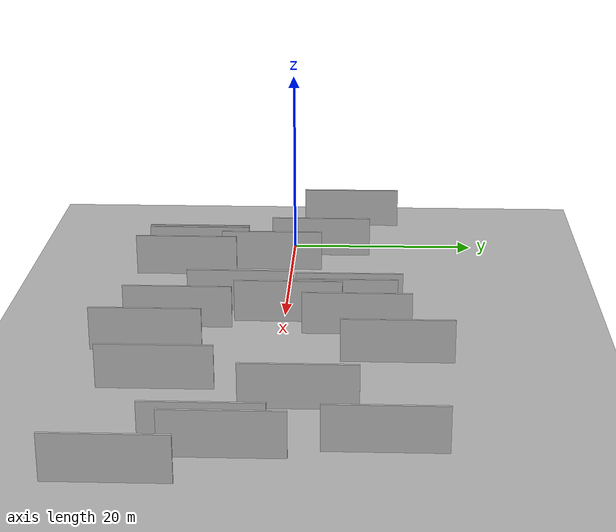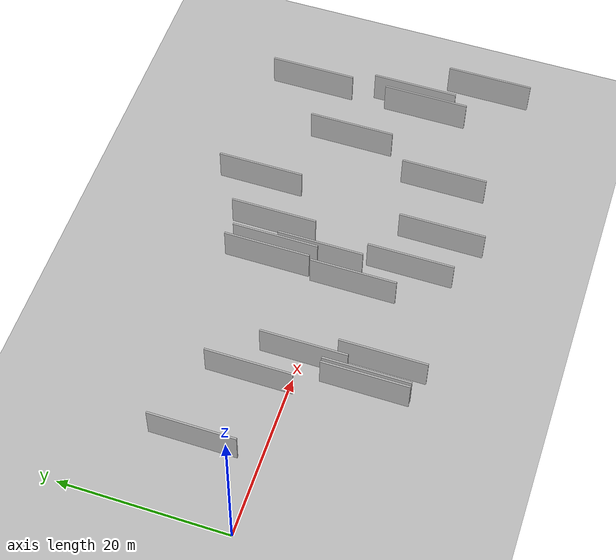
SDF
<?xml version="1.0" encoding="utf-8"?>

<sdf version="1.6">

   <world name="default">

      <gui fullscreen="0">

         <camera name="user_camera">

            <pose>-15 0 4.57585 0 0 0</pose>

            <view_controller>orbit</view_controller>

         </camera>

      </gui>

      <scene>

         <sky>

           <clouds>

             <speed>12</speed>

           </clouds>

         </sky>

         <ambient>0.4 0.4 0.4 1</ambient>

         <background>0.7 0.7 0.7 1</background>

         <shadows>1</shadows>

      </scene>

      <gravity>0 0 -9.8066</gravity>

      <magnetic_field>6e-06 2.3e-05 -4.2e-05</magnetic_field>

      <physics default="0" name="default_physics" type="ode">

         <ode>

            <solver>

               <type>quick</type>

               <iters>10</iters>

               <sor>1.0</sor>

               <use_dynamic_moi_rescaling>0</use_dynamic_moi_rescaling>

            </solver>

            <constraints>

               <cfm>0</cfm>

               <erp>0.2</erp>

               <contact_max_correcting_vel>100</contact_max_correcting_vel>

               <contact_surface_layer>0.001</contact_surface_layer>

            </constraints>

         </ode>

         <max_step_size>0.004</max_step_size>

         <real_time_factor>1</real_time_factor>

         <real_time_update_rate>250</real_time_update_rate>

      </physics>

      <light name="sun" type="directional">

         <cast_shadows>1</cast_shadows>

         <pose>0 0 10 0 0 0</pose>

         <diffuse>0.8 0.8 0.8 1</diffuse>

         <specular>0.2 0.2 0.2 1</specular>

         <attenuation>

            <range>1000</range>

            <constant>0.9</constant>

            <linear>0.01</linear>

            <quadratic>0.001</quadratic>

         </attenuation>

         <direction>-0.5 0.1 -0.9</direction>

      </light>

      <include>

         <name>ground_plane_1</name>

         <uri>model://HANNAS_ground_plane</uri>

         <pose>0 0 0  0 0 0</pose>

      </include>

      <include>

         <name>ground_plane_2</name>

         <uri>model://HANNAS_ground_plane</uri>

         <pose>100 0 0  0 0 0</pose>

      </include>

      <model name="HANNAS_wall_1">

         <static>1</static>

         <pose frame="">32.2207 6.1611 5.0 0.000000 0.000000 1.570796</pose>

         <link name="link">

            <pose frame="">0 0 2.00 0 0 0</pose>

            <collision name="collision">

               <geometry>

                  <box>

                     <size>10.00 0.2 4.00</size>

                  </box>

               </geometry>

               <max_contacts>10</max_contacts>

               <surface>

                  <contact>

                     <ode/>

                  </contact>

                  <bounce/>

                  <friction>

                     <torsional>

                        <ode/>

                     </torsional>

                     <ode/>

                  </friction>

               </surface>

            </collision>

            <visual name="visual">

               <cast_shadows>0</cast_shadows>

               <geometry>

                  <box>

                     <size>10.00 0.2 4.00</size>

                  </box>

               </geometry>

               <material>

                  <script>

                     <uri>model://HANNAS_wall/materials/scripts</uri>

                     <uri>model://HANNAS_wall/materials/textures</uri>

                     <name>vrc/HANNAS_wall</name>

                  </script>

               </material>

            </visual>

            <self_collide>0</self_collide>

            <enable_wind>0</enable_wind>

            <kinematic>0</kinematic>

         </link>

      </model>

      <model name="HANNAS_wall_2">

         <static>1</static>

         <pose frame="">30.7261 6.6524 5.0 0.000000 0.000000 1.570796</pose>

         <link name="link">

            <pose frame="">0 0 2.00 0 0 0</pose>

            <collision name="collision">

               <geometry>

                  <box>

                     <size>10.00 0.2 4.00</size>

                  </box>

               </geometry>

               <max_contacts>10</max_contacts>

               <surface>

                  <contact>

                     <ode/>

                  </contact>

                  <bounce/>

                  <friction>

                     <torsional>

                        <ode/>

                     </torsional>

                     <ode/>

                  </friction>

               </surface>

            </collision>

            <visual name="visual">

               <cast_shadows>0</cast_shadows>

               <geometry>

                  <box>

                     <size>10.00 0.2 4.00</size>

                  </box>

               </geometry>

               <material>

                  <script>

                     <uri>model://HANNAS_wall/materials/scripts</uri>

                     <uri>model://HANNAS_wall/materials/textures</uri>

                     <name>vrc/HANNAS_wall</name>

                  </script>

               </material>

            </visual>

            <self_collide>0</self_collide>

            <enable_wind>0</enable_wind>

            <kinematic>0</kinematic>

         </link>

      </model>

      <model name="HANNAS_wall_3">

         <static>1</static>

         <pose frame="">30.2914 -3.5749 5.0 0.000000 0.000000 1.570796</pose>

         <link name="link">

            <pose frame="">0 0 2.00 0 0 0</pose>

            <collision name="collision">

               <geometry>

                  <box>

                     <size>10.00 0.2 4.00</size>

                  </box>

               </geometry>

               <max_contacts>10</max_contacts>

               <surface>

                  <contact>

                     <ode/>

                  </contact>

                  <bounce/>

                  <friction>

                     <torsional>

                        <ode/>

                     </torsional>

                     <ode/>

                  </friction>

               </surface>

            </collision>

            <visual name="visual">

               <cast_shadows>0</cast_shadows>

               <geometry>

                  <box>

                     <size>10.00 0.2 4.00</size>

                  </box>

               </geometry>

               <material>

                  <script>

                     <uri>model://HANNAS_wall/materials/scripts</uri>

                     <uri>model://HANNAS_wall/materials/textures</uri>

                     <name>vrc/HANNAS_wall</name>

                  </script>

               </material>

            </visual>

            <self_collide>0</self_collide>

            <enable_wind>0</enable_wind>

            <kinematic>0</kinematic>

         </link>

      </model>

      <model name="HANNAS_wall_4">

         <static>1</static>

         <pose frame="">62.5557 -10.7909 5.0 0.000000 0.000000 1.570796</pose>

         <link name="link">

            <pose frame="">0 0 2.00 0 0 0</pose>

            <collision name="collision">

               <geometry>

                  <box>

                     <size>10.00 0.2 4.00</size>

                  </box>

               </geometry>

               <max_contacts>10</max_contacts>

               <surface>

                  <contact>

                     <ode/>

                  </contact>

                  <bounce/>

                  <friction>

                     <torsional>

                        <ode/>

                     </torsional>

                     <ode/>

                  </friction>

               </surface>

            </collision>

            <visual name="visual">

               <cast_shadows>0</cast_shadows>

               <geometry>

                  <box>

                     <size>10.00 0.2 4.00</size>

                  </box>

               </geometry>

               <material>

                  <script>

                     <uri>model://HANNAS_wall/materials/scripts</uri>

                     <uri>model://HANNAS_wall/materials/textures</uri>

                     <name>vrc/HANNAS_wall</name>

                  </script>

               </material>

            </visual>

            <self_collide>0</self_collide>

            <enable_wind>0</enable_wind>

            <kinematic>0</kinematic>

         </link>

      </model>

      <model name="HANNAS_wall_5">

         <static>1</static>

         <pose frame="">35.4638 7.4393 5.0 0.000000 0.000000 1.570796</pose>

         <link name="link">

            <pose frame="">0 0 2.00 0 0 0</pose>

            <collision name="collision">

               <geometry>

                  <box>

                     <size>10.00 0.2 4.00</size>

                  </box>

               </geometry>

               <max_contacts>10</max_contacts>

               <surface>

                  <contact>

                     <ode/>

                  </contact>

                  <bounce/>

                  <friction>

                     <torsional>

                        <ode/>

                     </torsional>

                     <ode/>

                  </friction>

               </surface>

            </collision>

            <visual name="visual">

               <cast_shadows>0</cast_shadows>

               <geometry>

                  <box>

                     <size>10.00 0.2 4.00</size>

                  </box>

               </geometry>

               <material>

                  <script>

                     <uri>model://HANNAS_wall/materials/scripts</uri>

                     <uri>model://HANNAS_wall/materials/textures</uri>

                     <name>vrc/HANNAS_wall</name>

                  </script>

               </material>

            </visual>

            <self_collide>0</self_collide>

            <enable_wind>0</enable_wind>

            <kinematic>0</kinematic>

         </link>

      </model>

      <model name="HANNAS_wall_6">

         <static>1</static>

         <pose frame="">32.7932 1.0570 5.0 0.000000 0.000000 1.570796</pose>

         <link name="link">

            <pose frame="">0 0 2.00 0 0 0</pose>

            <collision name="collision">

               <geometry>

                  <box>

                     <size>10.00 0.2 4.00</size>

                  </box>

               </geometry>

               <max_contacts>10</max_contacts>

               <surface>

                  <contact>

                     <ode/>

                  </contact>

                  <bounce/>

                  <friction>

                     <torsional>

                        <ode/>

                     </torsional>

                     <ode/>

                  </friction>

               </surface>

            </collision>

            <visual name="visual">

               <cast_shadows>0</cast_shadows>

               <geometry>

                  <box>

                     <size>10.00 0.2 4.00</size>

                  </box>

               </geometry>

               <material>

                  <script>

                     <uri>model://HANNAS_wall/materials/scripts</uri>

                     <uri>model://HANNAS_wall/materials/textures</uri>

                     <name>vrc/HANNAS_wall</name>

                  </script>

               </material>

            </visual>

            <self_collide>0</self_collide>

            <enable_wind>0</enable_wind>

            <kinematic>0</kinematic>

         </link>

      </model>

      <model name="HANNAS_wall_7">

         <static>1</static>

         <pose frame="">34.3178 -9.0145 5.0 0.000000 0.000000 1.570796</pose>

         <link name="link">

            <pose frame="">0 0 2.00 0 0 0</pose>

            <collision name="collision">

               <geometry>

                  <box>

                     <size>10.00 0.2 4.00</size>

                  </box>

               </geometry>

               <max_contacts>10</max_contacts>

               <surface>

                  <contact>

                     <ode/>

                  </contact>

                  <bounce/>

                  <friction>

                     <torsional>

                        <ode/>

                     </torsional>

                     <ode/>

                  </friction>

               </surface>

            </collision>

            <visual name="visual">

               <cast_shadows>0</cast_shadows>

               <geometry>

                  <box>

                     <size>10.00 0.2 4.00</size>

                  </box>

               </geometry>

               <material>

                  <script>

                     <uri>model://HANNAS_wall/materials/scripts</uri>

                     <uri>model://HANNAS_wall/materials/textures</uri>

                     <name>vrc/HANNAS_wall</name>

                  </script>

               </material>

            </visual>

            <self_collide>0</self_collide>

            <enable_wind>0</enable_wind>

            <kinematic>0</kinematic>

         </link>

      </model>

      <model name="HANNAS_wall_8">

         <static>1</static>

         <pose frame="">19.7559 -1.3024 5.0 0.000000 0.000000 1.570796</pose>

         <link name="link">

            <pose frame="">0 0 2.00 0 0 0</pose>

            <collision name="collision">

               <geometry>

                  <box>

                     <size>10.00 0.2 4.00</size>

                  </box>

               </geometry>

               <max_contacts>10</max_contacts>

               <surface>

                  <contact>

                     <ode/>

                  </contact>

                  <bounce/>

                  <friction>

                     <torsional>

                        <ode/>

                     </torsional>

                     <ode/>

                  </friction>

               </surface>

            </collision>

            <visual name="visual">

               <cast_shadows>0</cast_shadows>

               <geometry>

                  <box>

                     <size>10.00 0.2 4.00</size>

                  </box>

               </geometry>

               <material>

                  <script>

                     <uri>model://HANNAS_wall/materials/scripts</uri>

                     <uri>model://HANNAS_wall/materials/textures</uri>

                     <name>vrc/HANNAS_wall</name>

                  </script>

               </material>

            </visual>

            <self_collide>0</self_collide>

            <enable_wind>0</enable_wind>

            <kinematic>0</kinematic>

         </link>

      </model>

      <model name="HANNAS_wall_9">

         <static>1</static>

         <pose frame="">15.6284 3.5156 5.0 0.000000 0.000000 1.570796</pose>

         <link name="link">

            <pose frame="">0 0 2.00 0 0 0</pose>

            <collision name="collision">

               <geometry>

                  <box>

                     <size>10.00 0.2 4.00</size>

                  </box>

               </geometry>

               <max_contacts>10</max_contacts>

               <surface>

                  <contact>

                     <ode/>

                  </contact>

                  <bounce/>

                  <friction>

                     <torsional>

                        <ode/>

                     </torsional>

                     <ode/>

                  </friction>

               </surface>

            </collision>

            <visual name="visual">

               <cast_shadows>0</cast_shadows>

               <geometry>

                  <box>

                     <size>10.00 0.2 4.00</size>

                  </box>

               </geometry>

               <material>

                  <script>

                     <uri>model://HANNAS_wall/materials/scripts</uri>

                     <uri>model://HANNAS_wall/materials/textures</uri>

                     <name>vrc/HANNAS_wall</name>

                  </script>

               </material>

            </visual>

            <self_collide>0</self_collide>

            <enable_wind>0</enable_wind>

            <kinematic>0</kinematic>

         </link>

      </model>

      <model name="HANNAS_wall_10">

         <static>1</static>

         <pose frame="">18.6064 -8.6807 5.0 0.000000 0.000000 1.570796</pose>

         <link name="link">

            <pose frame="">0 0 2.00 0 0 0</pose>

            <collision name="collision">

               <geometry>

                  <box>

                     <size>10.00 0.2 4.00</size>

                  </box>

               </geometry>

               <max_contacts>10</max_contacts>

               <surface>

                  <contact>

                     <ode/>

                  </contact>

                  <bounce/>

                  <friction>

                     <torsional>

                        <ode/>

                     </torsional>

                     <ode/>

                  </friction>

               </surface>

            </collision>

            <visual name="visual">

               <cast_shadows>0</cast_shadows>

               <geometry>

                  <box>

                     <size>10.00 0.2 4.00</size>

                  </box>

               </geometry>

               <material>

                  <script>

                     <uri>model://HANNAS_wall/materials/scripts</uri>

                     <uri>model://HANNAS_wall/materials/textures</uri>

                     <name>vrc/HANNAS_wall</name>

                  </script>

               </material>

            </visual>

            <self_collide>0</self_collide>

            <enable_wind>0</enable_wind>

            <kinematic>0</kinematic>

         </link>

      </model>

      <model name="HANNAS_wall_11">

         <static>1</static>

         <pose frame="">6.4660 6.5355 5.0 0.000000 0.000000 1.570796</pose>

         <link name="link">

            <pose frame="">0 0 2.00 0 0 0</pose>

            <collision name="collision">

               <geometry>

                  <box>

                     <size>10.00 0.2 4.00</size>

                  </box>

               </geometry>

               <max_contacts>10</max_contacts>

               <surface>

                  <contact>

                     <ode/>

                  </contact>

                  <bounce/>

                  <friction>

                     <torsional>

                        <ode/>

                     </torsional>

                     <ode/>

                  </friction>

               </surface>

            </collision>

            <visual name="visual">

               <cast_shadows>0</cast_shadows>

               <geometry>

                  <box>

                     <size>10.00 0.2 4.00</size>

                  </box>

               </geometry>

               <material>

                  <script>

                     <uri>model://HANNAS_wall/materials/scripts</uri>

                     <uri>model://HANNAS_wall/materials/textures</uri>

                     <name>vrc/HANNAS_wall</name>

                  </script>

               </material>

            </visual>

            <self_collide>0</self_collide>

            <enable_wind>0</enable_wind>

            <kinematic>0</kinematic>

         </link>

      </model>

      <model name="HANNAS_wall_12">

         <static>1</static>

         <pose frame="">50.3706 2.8285 5.0 0.000000 0.000000 1.570796</pose>

         <link name="link">

            <pose frame="">0 0 2.00 0 0 0</pose>

            <collision name="collision">

               <geometry>

                  <box>

                     <size>10.00 0.2 4.00</size>

                  </box>

               </geometry>

               <max_contacts>10</max_contacts>

               <surface>

                  <contact>

                     <ode/>

                  </contact>

                  <bounce/>

                  <friction>

                     <torsional>

                        <ode/>

                     </torsional>

                     <ode/>

                  </friction>

               </surface>

            </collision>

            <visual name="visual">

               <cast_shadows>0</cast_shadows>

               <geometry>

                  <box>

                     <size>10.00 0.2 4.00</size>

                  </box>

               </geometry>

               <material>

                  <script>

                     <uri>model://HANNAS_wall/materials/scripts</uri>

                     <uri>model://HANNAS_wall/materials/textures</uri>

                     <name>vrc/HANNAS_wall</name>

                  </script>

               </material>

            </visual>

            <self_collide>0</self_collide>

            <enable_wind>0</enable_wind>

            <kinematic>0</kinematic>

         </link>

      </model>

      <model name="HANNAS_wall_13">

         <static>1</static>

         <pose frame="">39.4436 -11.2261 5.0 0.000000 0.000000 1.570796</pose>

         <link name="link">

            <pose frame="">0 0 2.00 0 0 0</pose>

            <collision name="collision">

               <geometry>

                  <box>

                     <size>10.00 0.2 4.00</size>

                  </box>

               </geometry>

               <max_contacts>10</max_contacts>

               <surface>

                  <contact>

                     <ode/>

                  </contact>

                  <bounce/>

                  <friction>

                     <torsional>

                        <ode/>

                     </torsional>

                     <ode/>

                  </friction>

               </surface>

            </collision>

            <visual name="visual">

               <cast_shadows>0</cast_shadows>

               <geometry>

                  <box>

                     <size>10.00 0.2 4.00</size>

                  </box>

               </geometry>

               <material>

                  <script>

                     <uri>model://HANNAS_wall/materials/scripts</uri>

                     <uri>model://HANNAS_wall/materials/textures</uri>

                     <name>vrc/HANNAS_wall</name>

                  </script>

               </material>

            </visual>

            <self_collide>0</self_collide>

            <enable_wind>0</enable_wind>

            <kinematic>0</kinematic>

         </link>

      </model>

      <model name="HANNAS_wall_14">

         <static>1</static>

         <pose frame="">41.2879 11.0303 5.0 0.000000 0.000000 1.570796</pose>

         <link name="link">

            <pose frame="">0 0 2.00 0 0 0</pose>

            <collision name="collision">

               <geometry>

                  <box>

                     <size>10.00 0.2 4.00</size>

                  </box>

               </geometry>

               <max_contacts>10</max_contacts>

               <surface>

                  <contact>

                     <ode/>

                  </contact>

                  <bounce/>

                  <friction>

                     <torsional>

                        <ode/>

                     </torsional>

                     <ode/>

                  </friction>

               </surface>

            </collision>

            <visual name="visual">

               <cast_shadows>0</cast_shadows>

               <geometry>

                  <box>

                     <size>10.00 0.2 4.00</size>

                  </box>

               </geometry>

               <material>

                  <script>

                     <uri>model://HANNAS_wall/materials/scripts</uri>

                     <uri>model://HANNAS_wall/materials/textures</uri>

                     <name>vrc/HANNAS_wall</name>

                  </script>

               </material>

            </visual>

            <self_collide>0</self_collide>

            <enable_wind>0</enable_wind>

            <kinematic>0</kinematic>

         </link>

      </model>

      <model name="HANNAS_wall_15">

         <static>1</static>

         <pose frame="">58.5923 -2.5908 5.0 0.000000 0.000000 1.570796</pose>

         <link name="link">

            <pose frame="">0 0 2.00 0 0 0</pose>

            <collision name="collision">

               <geometry>

                  <box>

                     <size>10.00 0.2 4.00</size>

                  </box>

               </geometry>

               <max_contacts>10</max_contacts>

               <surface>

                  <contact>

                     <ode/>

                  </contact>

                  <bounce/>

                  <friction>

                     <torsional>

                        <ode/>

                     </torsional>

                     <ode/>

                  </friction>

               </surface>

            </collision>

            <visual name="visual">

               <cast_shadows>0</cast_shadows>

               <geometry>

                  <box>

                     <size>10.00 0.2 4.00</size>

                  </box>

               </geometry>

               <material>

                  <script>

                     <uri>model://HANNAS_wall/materials/scripts</uri>

                     <uri>model://HANNAS_wall/materials/textures</uri>

                     <name>vrc/HANNAS_wall</name>

                  </script>

               </material>

            </visual>

            <self_collide>0</self_collide>

            <enable_wind>0</enable_wind>

            <kinematic>0</kinematic>

         </link>

      </model>

      <model name="HANNAS_wall_16">

         <static>1</static>

         <pose frame="">57.3657 9.8621 5.0 0.000000 0.000000 1.570796</pose>

         <link name="link">

            <pose frame="">0 0 2.00 0 0 0</pose>

            <collision name="collision">

               <geometry>

                  <box>

                     <size>10.00 0.2 4.00</size>

                  </box>

               </geometry>

               <max_contacts>10</max_contacts>

               <surface>

                  <contact>

                     <ode/>

                  </contact>

                  <bounce/>

                  <friction>

                     <torsional>

                        <ode/>

                     </torsional>

                     <ode/>

                  </friction>

               </surface>

            </collision>

            <visual name="visual">

               <cast_shadows>0</cast_shadows>

               <geometry>

                  <box>

                     <size>10.00 0.2 4.00</size>

                  </box>

               </geometry>

               <material>

                  <script>

                     <uri>model://HANNAS_wall/materials/scripts</uri>

                     <uri>model://HANNAS_wall/materials/textures</uri>

                     <name>vrc/HANNAS_wall</name>

                  </script>

               </material>

            </visual>

            <self_collide>0</self_collide>

            <enable_wind>0</enable_wind>

            <kinematic>0</kinematic>

         </link>

      </model>

      <model name="HANNAS_wall_17">

         <static>1</static>

         <pose frame="">57.3069 -4.2663 5.0 0.000000 0.000000 1.570796</pose>

         <link name="link">

            <pose frame="">0 0 2.00 0 0 0</pose>

            <collision name="collision">

               <geometry>

                  <box>

                     <size>10.00 0.2 4.00</size>

                  </box>

               </geometry>

               <max_contacts>10</max_contacts>

               <surface>

                  <contact>

                     <ode/>

                  </contact>

                  <bounce/>

                  <friction>

                     <torsional>

                        <ode/>

                     </torsional>

                     <ode/>

                  </friction>

               </surface>

            </collision>

            <visual name="visual">

               <cast_shadows>0</cast_shadows>

               <geometry>

                  <box>

                     <size>10.00 0.2 4.00</size>

                  </box>

               </geometry>

               <material>

                  <script>

                     <uri>model://HANNAS_wall/materials/scripts</uri>

                     <uri>model://HANNAS_wall/materials/textures</uri>

                     <name>vrc/HANNAS_wall</name>

                  </script>

               </material>

            </visual>

            <self_collide>0</self_collide>

            <enable_wind>0</enable_wind>

            <kinematic>0</kinematic>

         </link>

      </model>

      <model name="HANNAS_wall_18">

         <static>1</static>

         <pose frame="">47.0503 -9.3611 5.0 0.000000 0.000000 1.570796</pose>

         <link name="link">

            <pose frame="">0 0 2.00 0 0 0</pose>

            <collision name="collision">

               <geometry>

                  <box>

                     <size>10.00 0.2 4.00</size>

                  </box>

               </geometry>

               <max_contacts>10</max_contacts>

               <surface>

                  <contact>

                     <ode/>

                  </contact>

                  <bounce/>

                  <friction>

                     <torsional>

                        <ode/>

                     </torsional>

                     <ode/>

                  </friction>

               </surface>

            </collision>

            <visual name="visual">

               <cast_shadows>0</cast_shadows>

               <geometry>

                  <box>

                     <size>10.00 0.2 4.00</size>

                  </box>

               </geometry>

               <material>

                  <script>

                     <uri>model://HANNAS_wall/materials/scripts</uri>

                     <uri>model://HANNAS_wall/materials/textures</uri>

                     <name>vrc/HANNAS_wall</name>

                  </script>

               </material>

            </visual>

            <self_collide>0</self_collide>

            <enable_wind>0</enable_wind>

            <kinematic>0</kinematic>

         </link>

      </model>

      <model name="HANNAS_wall_19">

         <static>1</static>

         <pose frame="">21.3014 -9.7196 5.0 0.000000 0.000000 1.570796</pose>

         <link name="link">

            <pose frame="">0 0 2.00 0 0 0</pose>

            <collision name="collision">

               <geometry>

                  <box>

                     <size>10.00 0.2 4.00</size>

                  </box>

               </geometry>

               <max_contacts>10</max_contacts>

               <surface>

                  <contact>

                     <ode/>

                  </contact>

                  <bounce/>

                  <friction>

                     <torsional>

                        <ode/>

                     </torsional>

                     <ode/>

                  </friction>

               </surface>

            </collision>

            <visual name="visual">

               <cast_shadows>0</cast_shadows>

               <geometry>

                  <box>

                     <size>10.00 0.2 4.00</size>

                  </box>

               </geometry>

               <material>

                  <script>

                     <uri>model://HANNAS_wall/materials/scripts</uri>

                     <uri>model://HANNAS_wall/materials/textures</uri>

                     <name>vrc/HANNAS_wall</name>

                  </script>

               </material>

            </visual>

            <self_collide>0</self_collide>

            <enable_wind>0</enable_wind>

            <kinematic>0</kinematic>

         </link>

      </model>

      <model name="HANNAS_wall_20">

         <static>1</static>

         <pose frame="">18.0748 -8.6903 5.0 0.000000 0.000000 1.570796</pose>

         <link name="link">

            <pose frame="">0 0 2.00 0 0 0</pose>

            <collision name="collision">

               <geometry>

                  <box>

                     <size>10.00 0.2 4.00</size>

                  </box>

               </geometry>

               <max_contacts>10</max_contacts>

               <surface>

                  <contact>

                     <ode/>

                  </contact>

                  <bounce/>

                  <friction>

                     <torsional>

                        <ode/>

                     </torsional>

                     <ode/>

                  </friction>

               </surface>

            </collision>

            <visual name="visual">

               <cast_shadows>0</cast_shadows>

               <geometry>

                  <box>

                     <size>10.00 0.2 4.00</size>

                  </box>

               </geometry>

               <material>

                  <script>

                     <uri>model://HANNAS_wall/materials/scripts</uri>

                     <uri>model://HANNAS_wall/materials/textures</uri>

                     <name>vrc/HANNAS_wall</name>

                  </script>

               </material>

            </visual>

            <self_collide>0</self_collide>

            <enable_wind>0</enable_wind>

            <kinematic>0</kinematic>

         </link>

      </model>

   </world>

</sdf>

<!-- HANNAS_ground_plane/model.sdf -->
<sdf version="1.4">
<model name="HANNAS_ground_plane">
  <static>true</static>
    <link name="link">
      <collision name="collision">
        <geometry>
          <plane>
            <normal>0 0 1</normal>
            <size>1000 1000</size>
          </plane>
        </geometry>
        <surface>
          <friction>
            <ode>
              <mu>100</mu>
              <mu2>50</mu2>
            </ode>
          </friction>
        </surface>
      </collision>
      <visual name="visual">
        <cast_shadows>false</cast_shadows>
        <geometry>
          <plane>
            <normal>0 0 1</normal>
            <size>1000 1000</size>
          </plane>
        </geometry>
        <material>
          <script>
            <uri>model://HANNAS_ground_plane/materials/scripts/HANNAS_ground_plane.material</uri>
	    <uri>model://HANNAS_ground_plane/materials/textures</uri>
            <name>HANNASGroundPlane/Image</name>
          </script>
        </material>
      </visual>
    </link>
  </model>
</sdf>
